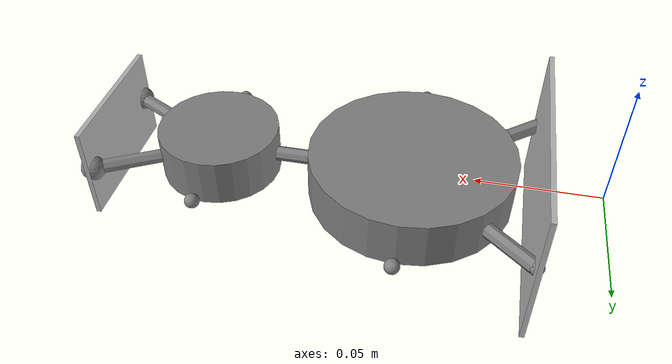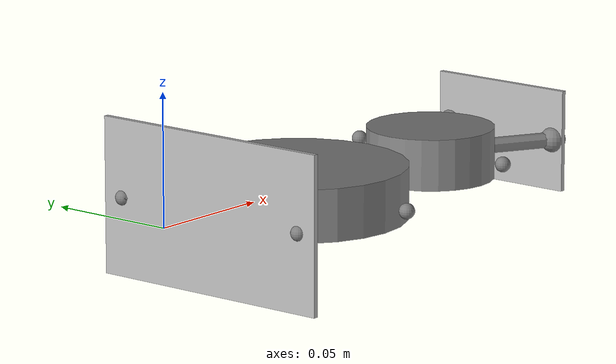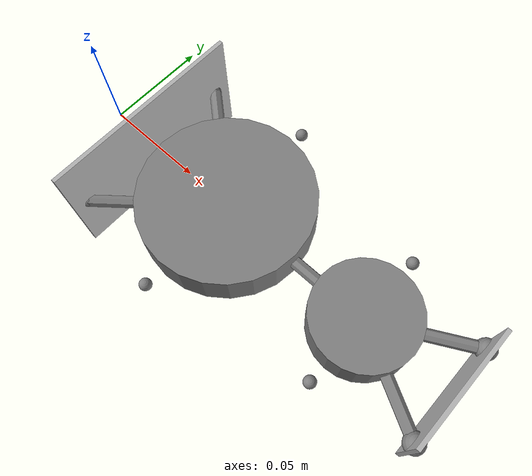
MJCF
<?xml version='1.0' encoding='UTF-8'?>
<mujoco>

    <option timestep="1e-4"/>
    <option gravity="0 0 -9.8"/>

    <asset>
        <texture type="skybox" builtin="gradient"
                 rgb1="1 1 1" rgb2="0.5 0.5 0.5"
                 width="256" height="256"/>
    </asset>

    <worldbody>

        <camera name="wide" pos="0 0 2" zaxis="0 0 1" fovy="100"/>

        <light pos="0 0 5" dir="0 0 -1"/>

        <!-- Блок 1 -->
        <body name="body_block1" pos="0.075 0 0">
            <joint name="block1_joint" type="slide" axis="0 1 0"
                   limited="true" range="-0.1 0.1" damping="0.0001"/>

            <geom name="block1" type="cylinder" size="0.042 0.01"/>

            <geom name="wall1" type="box" pos="-0.05 0 0"
                  size="0.001 0.05 0.03" rgba=".7 .7 .7 1"/>

            <site name="s1_wall1" pos="-0.05 0.042 0" size="0.003"/>
            <site name="s2_wall1" pos="-0.05 -0.042 0" size="0.003"/>

            <body name="t1_block1_body">
                <joint name="t1_block1_joint" type="slide" axis="1 0 0"/>
                <joint type="slide" axis="0 1 0"/>
                <geom type="sphere" size="0.002"/>
                <site name="t1_block1" size="0.003"/>
            </body>

            <body name="t2_block1_body">
                <joint name="t2_block1_joint" type="slide" axis="1 0 0"/>
                <joint type="slide" axis="0 1 0"/>
                <geom type="sphere" size="0.002"/>
                <site name="t2_block1" size="0.003"/>
            </body>

            <site name="s1_b1" pos="0 0.052 0" size="0.003"/>
            <site name="s2_b1" pos="0 -0.052 0" size="0.003"/>

            <!-- Блок 2 -->
            <body name="body_block2" pos="0.081 0 0">
                <joint name="block2_joint" type="slide" axis="0 1 0"
                       limited="true" range="-0.1 0.1" damping="0.0001"/>

                <geom name="block2" type="cylinder" size="0.025 0.01"/>

                <body name="t1_block2_body">
                    <joint name="t1_block2_joint" type="slide" axis="1 0 0"/>
                    <joint type="slide" axis="0 1 0"/>
                    <geom type="sphere" size="0.002"/>
                    <site name="t1_block2" size="0.003"/>
                </body>

                <body name="t2_block2_body">
                    <joint name="t2_block2_joint" type="slide" axis="1 0 0"/>
                    <joint type="slide" axis="0 1 0"/>
                    <geom type="sphere" size="0.002"/>
                    <site name="t2_block2" size="0.003"/>
                </body>

                <site name="s1_b2" pos="0 -0.035 0" size="0.003"/>
                <site name="s2_b2" pos="0 0.035 0" size="0.003"/>

                <body name="load" pos="0.046 0 0">
                    <geom type="box" size="0.001 0.03 0.02" rgba=".7 .7 .7 1"/>
                    <site name="s1_load" pos="0 -0.025 0"/>
                    <site name="s2_load" pos="0 0.025 0"/>
                </body>
            </body>
        </body>

    </worldbody>

    <tendon>
        <spatial width="0.003">
            <site site="s1_wall1"/>
            <geom geom="block1" sidesite="s1_b1"/>
            <site site="t1_block1"/>
            <site site="t1_block2"/>
            <geom geom="block2" sidesite="s1_b2"/>
            <site site="s1_load"/>
        </spatial>

        <spatial width="0.003">
            <site site="s2_wall1"/>
            <geom geom="block1" sidesite="s2_b1"/>
            <site site="t2_block1"/>
            <site site="t2_block2"/>
            <geom geom="block2" sidesite="s2_b2"/>
            <site site="s2_load"/>
        </spatial>
    </tendon>

    <actuator>
        <position joint="block1_joint" kp="1"/>
        <position joint="block2_joint" kp="1"/>
    </actuator>

</mujoco>
